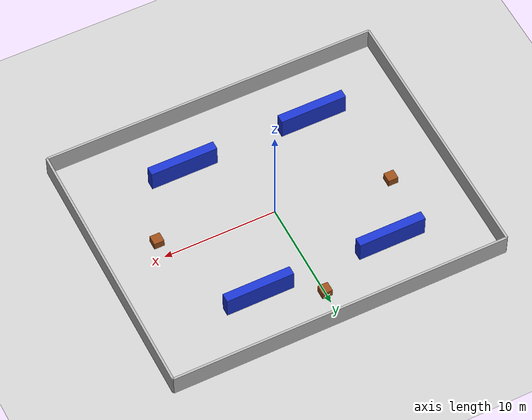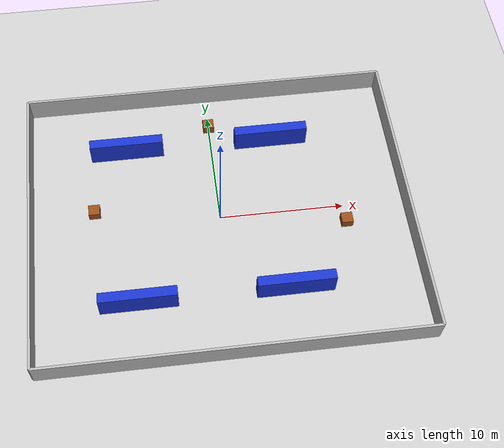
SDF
<?xml version="1.0"?>
<sdf version="1.6">
  <world name="ciima_warehouse">

    <include>
      <uri>model://ground_plane</uri>
    </include>
    <include>
      <uri>model://sun</uri>
    </include>

    <!-- Warehouse boundary: 30 m x 24 m -->

    <model name="north_wall">
      <static>true</static>
      <pose>0 12 1 0 0 0</pose>
      <link name="wall">
        <collision name="collision">
          <geometry><box><size>30 0.2 2</size></box></geometry>
        </collision>
        <visual name="visual">
          <geometry><box><size>30 0.2 2</size></box></geometry>
        </visual>
      </link>
    </model>

    <model name="south_wall">
      <static>true</static>
      <pose>0 -12 1 0 0 0</pose>
      <link name="wall">
        <collision name="collision">
          <geometry><box><size>30 0.2 2</size></box></geometry>
        </collision>
        <visual name="visual">
          <geometry><box><size>30 0.2 2</size></box></geometry>
        </visual>
      </link>
    </model>

    <model name="east_wall">
      <static>true</static>
      <pose>15 0 1 0 0 0</pose>
      <link name="wall">
        <collision name="collision">
          <geometry><box><size>0.2 24 2</size></box></geometry>
        </collision>
        <visual name="visual">
          <geometry><box><size>0.2 24 2</size></box></geometry>
        </visual>
      </link>
    </model>

    <model name="west_wall">
      <static>true</static>
      <pose>-15 0 1 0 0 0</pose>
      <link name="wall">
        <collision name="collision">
          <geometry><box><size>0.2 24 2</size></box></geometry>
        </collision>
        <visual name="visual">
          <geometry><box><size>0.2 24 2</size></box></geometry>
        </visual>
      </link>
    </model>

    <!-- Storage rack section A -->
    <model name="rack_1">
      <static>true</static>
      <pose>-7 7 1 0 0 0</pose>
      <link name="rack">
        <collision name="collision">
          <geometry><box><size>6 0.8 2</size></box></geometry>
        </collision>
        <visual name="visual">
          <geometry><box><size>6 0.8 2</size></box></geometry>
          <material><ambient>0.1 0.2 0.8 1</ambient><diffuse>0.1 0.2 0.8 1</diffuse></material>
        </visual>
      </link>
    </model>

    <model name="rack_2">
      <static>true</static>
      <pose>5 7 1 0 0 0</pose>
      <link name="rack">
        <collision name="collision">
          <geometry><box><size>6 0.8 2</size></box></geometry>
        </collision>
        <visual name="visual">
          <geometry><box><size>6 0.8 2</size></box></geometry>
          <material><ambient>0.1 0.2 0.8 1</ambient><diffuse>0.1 0.2 0.8 1</diffuse></material>
        </visual>
      </link>
    </model>

    <!-- Storage rack section B -->
    <model name="rack_3">
      <static>true</static>
      <pose>-7 -7 1 0 0 0</pose>
      <link name="rack">
        <collision name="collision">
          <geometry><box><size>6 0.8 2</size></box></geometry>
        </collision>
        <visual name="visual">
          <geometry><box><size>6 0.8 2</size></box></geometry>
          <material><ambient>0.1 0.2 0.8 1</ambient><diffuse>0.1 0.2 0.8 1</diffuse></material>
        </visual>
      </link>
    </model>

    <model name="rack_4">
      <static>true</static>
      <pose>5 -7 1 0 0 0</pose>
      <link name="rack">
        <collision name="collision">
          <geometry><box><size>6 0.8 2</size></box></geometry>
        </collision>
        <visual name="visual">
          <geometry><box><size>6 0.8 2</size></box></geometry>
          <material><ambient>0.1 0.2 0.8 1</ambient><diffuse>0.1 0.2 0.8 1</diffuse></material>
        </visual>
      </link>
    </model>

    <!-- Pallets: distributed away from the starting area -->

    <model name="pallet_1">
      <static>true</static>
      <pose>-10 1.5 0.35 0 0 0</pose>
      <link name="pallet">
        <collision name="collision">
          <geometry><box><size>0.9 0.9 0.7</size></box></geometry>
        </collision>
        <visual name="visual">
          <geometry><box><size>0.9 0.9 0.7</size></box></geometry>
          <material><ambient>0.6 0.3 0.1 1</ambient><diffuse>0.6 0.3 0.1 1</diffuse></material>
        </visual>
      </link>
    </model>

    <model name="pallet_2">
      <static>true</static>
      <pose>10 -1.5 0.35 0 0 0</pose>
      <link name="pallet">
        <collision name="collision">
          <geometry><box><size>0.9 0.9 0.7</size></box></geometry>
        </collision>
        <visual name="visual">
          <geometry><box><size>0.9 0.9 0.7</size></box></geometry>
          <material><ambient>0.6 0.3 0.1 1</ambient><diffuse>0.6 0.3 0.1 1</diffuse></material>
        </visual>
      </link>
    </model>

    <model name="pallet_3">
      <static>true</static>
      <pose>0 9 0.35 0 0 0</pose>
      <link name="pallet">
        <collision name="collision">
          <geometry><box><size>0.9 0.9 0.7</size></box></geometry>
        </collision>
        <visual name="visual">
          <geometry><box><size>0.9 0.9 0.7</size></box></geometry>
          <material><ambient>0.6 0.3 0.1 1</ambient><diffuse>0.6 0.3 0.1 1</diffuse></material>
        </visual>
      </link>
    </model>

  </world>
</sdf>
